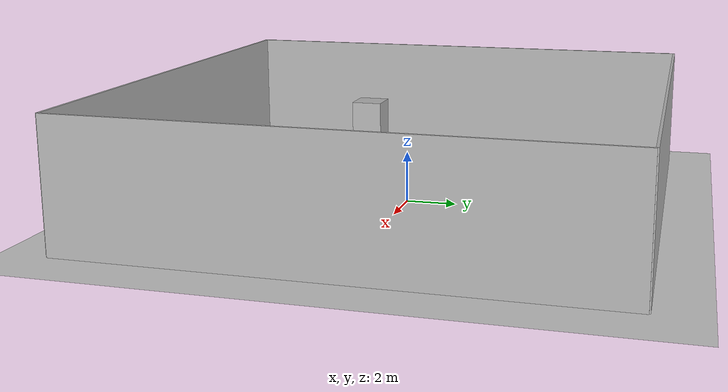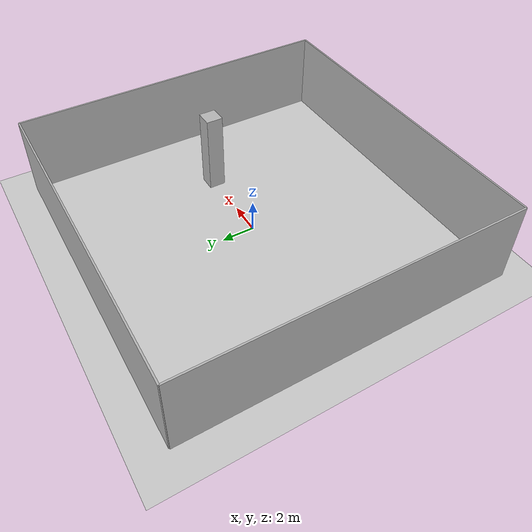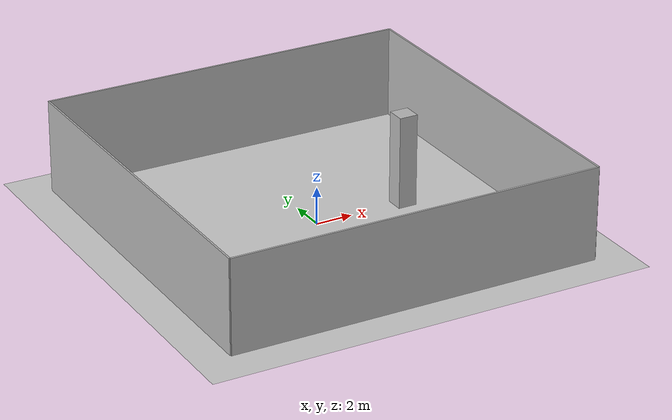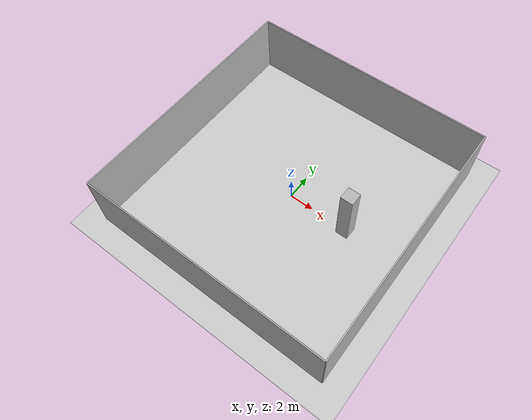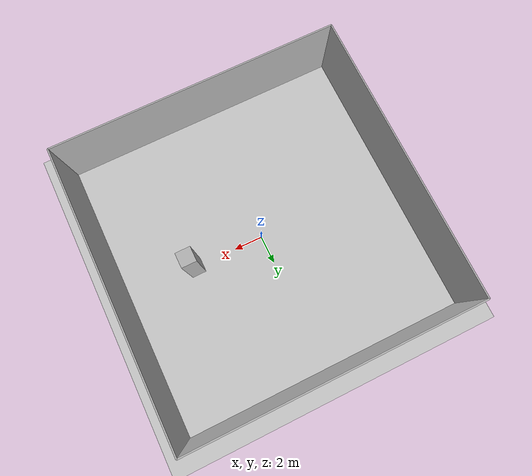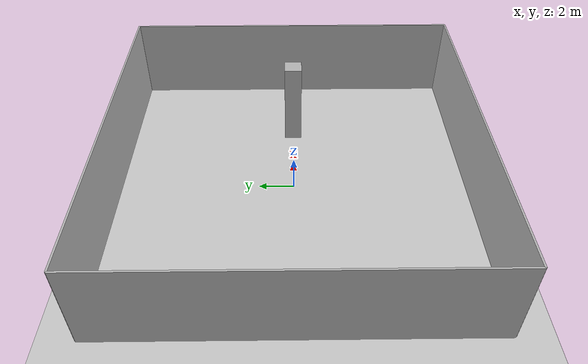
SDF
<sdf version="1.5">
 <world name="default">
  <light type="directional" name="sun">
   <pose>0 0 10 0 0 0</pose>
   <diffuse>1 0.6 0.4 1</diffuse>
   <specular>0.2 0.2 0.2 1</specular>
   <attenuation>
    <range>1000</range>
    <constant>0.9</constant>
    <linear>0.01</linear>
    <quadratic>0.001</quadratic>
   </attenuation>
   <direction>-0.2 0.1 -0.5</direction>
  </light>
  <include><uri>model://ground_plane</uri></include>
  <model name="wall_1">
   <static>true</static>
   <link name="link">
    <collision name="collision"><geometry><box><size>20 0.1 5</size></box></geometry></collision>
    <visual name="visual">
     <geometry><box><size>20 0.1 5</size></box></geometry>
     <material><script><uri>file://media/materials/scripts/gazebo.material</uri></script></material>
    </visual>
    <pose>0 10 2.5 0 0 0</pose>
   </link>
  </model>
  <model name="wall_2">
   <static>true</static>
   <link name="link">
    <collision name="collision"><geometry><box><size>20 0.1 5</size></box></geometry></collision>
    <visual name="visual">
     <geometry><box><size>20 0.1 5</size></box></geometry>
     <material><script><uri>file://media/materials/scripts/gazebo.material</uri></script></material>
    </visual>
    <pose>0 -10 2.5 0 0 0</pose>
   </link>
  </model>
  <model name="wall_3">
   <static>true</static>
   <link name="link">
    <collision name="collision"><geometry><box><size>0.1 20 5</size></box></geometry></collision>
    <visual name="visual">
     <geometry><box><size>0.1 20 5</size></box></geometry>
     <material><script><uri>file://media/materials/scripts/gazebo.material</uri></script></material>
    </visual>
    <pose>10 0 2.5 0 0 0</pose>
   </link>
  </model>
  <model name="wall_4">
   <static>true</static>
   <link name="link">
    <collision name="collision"><geometry><box><size>0.1 20 5</size></box></geometry></collision>
    <visual name="visual">
     <geometry><box><size>0.1 20 5</size></box></geometry>
     <material><script><uri>file://media/materials/scripts/gazebo.material</uri></script></material>
    </visual>
    <pose>-10 0 2.5 0 0 0</pose>
   </link>
  </model>
  <model name="pillar">
   <static>true</static>
   <link name="link">
    <collision name="collision"><geometry><box><size>1 1 5</size></box></geometry></collision>
    <visual name="visual">
     <geometry><box><size>1 1 5</size></box></geometry>
     <material><script><uri>file://media/materials/scripts/gazebo.material</uri></script></material>
    </visual>
    <pose>5 0 2.5 0 0 0</pose>
   </link>
  </model>
  <plugin name="ros_interface_plugin" filename="librotors_gazebo_ros_interface_plugin.so"/>
  <physics name="default_physics" default="0" type="ode">
   <gravity>0 0 -9.8066</gravity>
   <ode>
    <solver>
     <type>quick</type>
     <iters>10</iters>
     <sor>1.3</sor>
     <use_dynamic_moi_rescaling>0</use_dynamic_moi_rescaling>
    </solver>
    <constraints>
     <cfm>0</cfm>
     <erp>0.2</erp>
     <contact_max_correcting_vel>100</contact_max_correcting_vel>
     <contact_surface_layer>0.001</contact_surface_layer>
    </constraints>
   </ode>
   <max_step_size>0.004</max_step_size>
   <real_time_factor>1</real_time_factor>
   <real_time_update_rate>250</real_time_update_rate>
   <magnetic_field>6.0e-6 2.3e-5 -4.2e-5</magnetic_field>
  </physics>
 </world>
</sdf>
